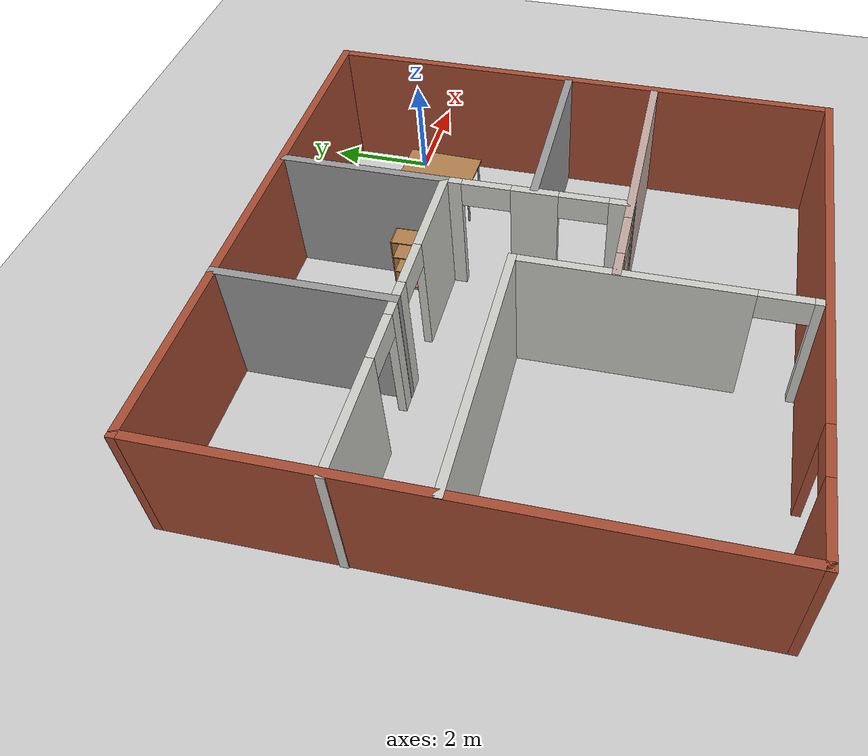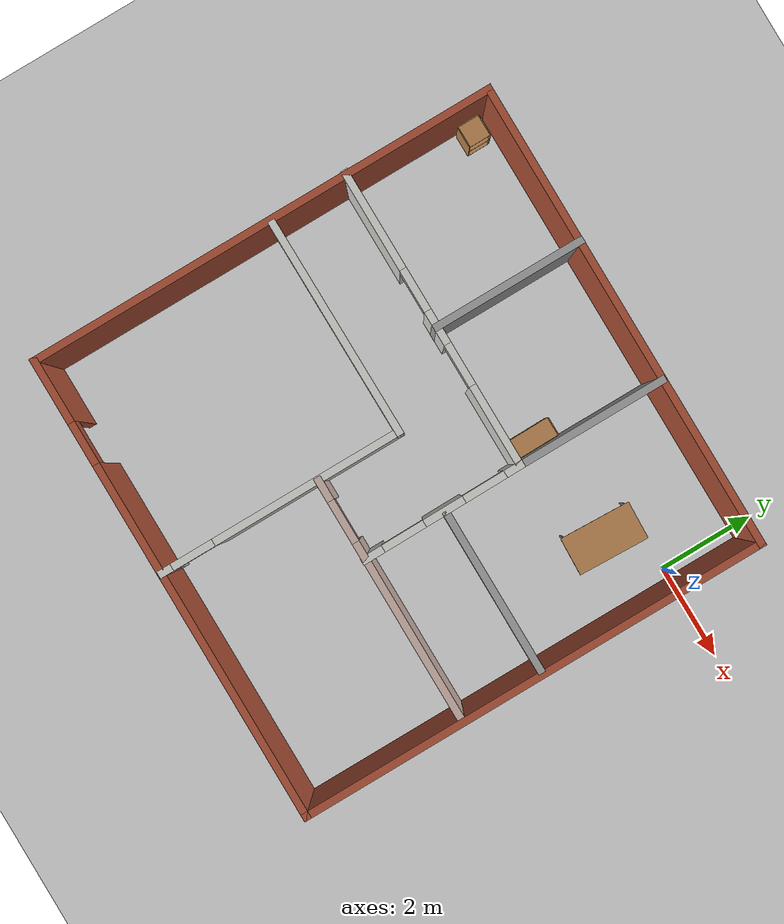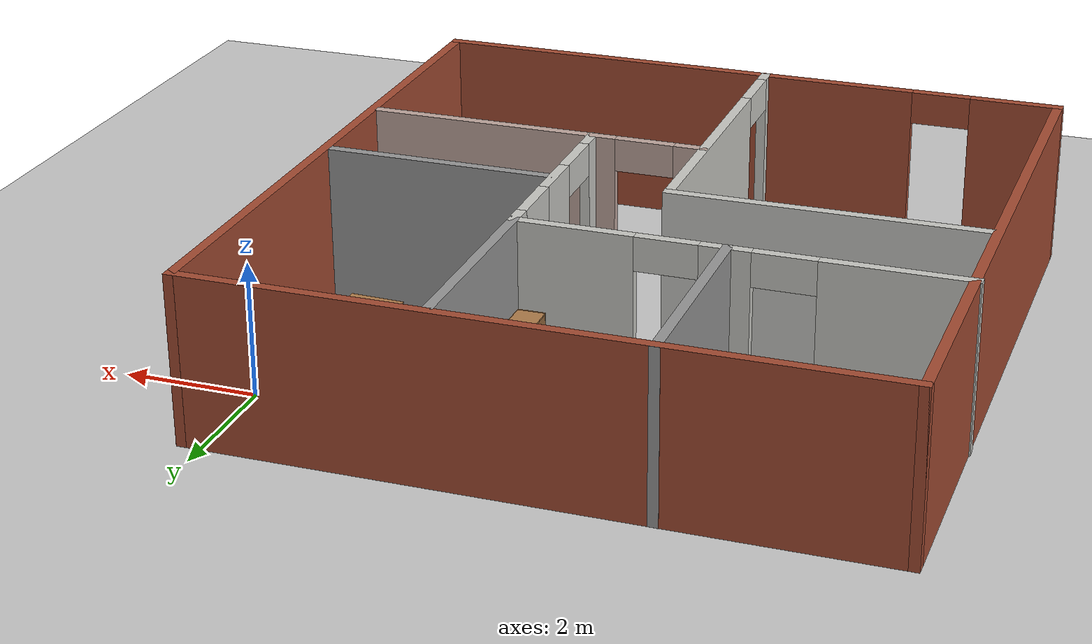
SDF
<sdf version="1.7">
 <world name="default">
  <light name="sun" type="directional">
   <pose>0 0 10 0 -0 0</pose>
   <diffuse>0.8 0.8 0.8 1</diffuse>
   <specular>0.2 0.2 0.2 1</specular>
   <attenuation>
    <range>1000</range>
    <constant>0.9</constant>
    <linear>0.01</linear>
    <quadratic>0.001</quadratic>
   </attenuation>
   <direction>-0.5 0.1 -0.9</direction>
   <spot><inner_angle>0</inner_angle><outer_angle>0</outer_angle><falloff>0</falloff></spot>
  </light>
  <model name="ground_plane">
   <static>1</static>
   <link name="link">
    <collision name="collision">
     <geometry><plane><normal>0 0 1</normal><size>100 100</size></plane></geometry>
     <surface>
      <contact><collide_bitmask>65535</collide_bitmask></contact>
      <friction><ode><mu>100</mu><mu2>50</mu2></ode></friction>
     </surface>
    </collision>
    <visual name="visual">
     <cast_shadows>0</cast_shadows>
     <geometry><plane><normal>0 0 1</normal><size>100 100</size></plane></geometry>
     <material>
      <script><uri>file://media/materials/scripts/gazebo.material</uri><name>Gazebo/Grey</name></script>
     </material>
    </visual>
   </link>
  </model>
  <gravity>0 0 -9.8</gravity>
  <magnetic_field>6e-06 2.3e-05 -4.2e-05</magnetic_field>
  <atmosphere type="adiabatic"/>
  <physics type="ode">
   <max_step_size>0.001</max_step_size>
   <real_time_factor>1</real_time_factor>
   <real_time_update_rate>1000</real_time_update_rate>
  </physics>
  <scene><ambient>0.4 0.4 0.4 1</ambient><background>0.7 0.7 0.7 1</background><shadows>1</shadows></scene>
  <spherical_coordinates>
   <surface_model>EARTH_WGS84</surface_model>
   <latitude_deg>0</latitude_deg>
   <longitude_deg>0</longitude_deg>
   <elevation>0</elevation>
   <heading_deg>0</heading_deg>
  </spherical_coordinates>
  <model name="casa">
   <pose>-4.66509 -3.3325 0 0 -0 0</pose>
   <link name="Wall_0">
    <collision name="Wall_0_Collision">
     <geometry><box><size>10 0.15 2.5</size></box></geometry>
     <pose>0 0 1.25 0 -0 0</pose>
    </collision>
    <visual name="Wall_0_Visual">
     <pose>0 0 1.25 0 -0 0</pose>
     <geometry><box><size>10 0.15 2.5</size></box></geometry>
     <material>
      <script><uri>file://media/materials/scripts/gazebo.material</uri><name>Gazebo/Bricks</name></script>
      <ambient>1 1 1 1</ambient>
     </material>
     <meta><layer>0</layer></meta>
    </visual>
    <pose>-4.91467 -0.001015 0 0 -0 -1.5708</pose>
   </link>
   <link name="Wall_13">
    <pose>0.010213 -4.92626 0 0 -0 -4.9e-05</pose>
    <visual name="Wall_13_Visual_0">
     <pose>-4.29241 0 1.25 0 -0 0</pose>
     <geometry><box><size>1.41518 0.15 2.5</size></box></geometry>
     <material>
      <script><uri>file://media/materials/scripts/gazebo.material</uri><name>Gazebo/Bricks</name></script>
      <ambient>1 1 1 1</ambient>
     </material>
     <meta><layer>0</layer></meta>
    </visual>
    <collision name="Wall_13_Collision_0">
     <geometry><box><size>1.41518 0.15 2.5</size></box></geometry>
     <pose>-4.29241 0 1.25 0 -0 0</pose>
    </collision>
    <visual name="Wall_13_Visual_1">
     <pose>1.15759 0 1.25 0 -0 0</pose>
     <geometry><box><size>7.68482 0.15 2.5</size></box></geometry>
     <material>
      <script><uri>file://media/materials/scripts/gazebo.material</uri><name>Gazebo/Bricks</name></script>
      <ambient>1 1 1 1</ambient>
     </material>
     <meta><layer>0</layer></meta>
    </visual>
    <collision name="Wall_13_Collision_1">
     <geometry><box><size>7.68482 0.15 2.5</size></box></geometry>
     <pose>1.15759 0 1.25 0 -0 0</pose>
    </collision>
    <visual name="Wall_13_Visual_2">
     <pose>-3.13482 0 2.25 0 -0 0</pose>
     <geometry><box><size>0.9 0.15 0.5</size></box></geometry>
     <material>
      <script><uri>file://media/materials/scripts/gazebo.material</uri><name>Gazebo/Bricks</name></script>
      <ambient>1 1 1 1</ambient>
     </material>
     <meta><layer>0</layer></meta>
    </visual>
    <collision name="Wall_13_Collision_2">
     <geometry><box><size>0.9 0.15 0.5</size></box></geometry>
     <pose>-3.13482 0 2.25 0 -0 0</pose>
    </collision>
   </link>
   <link name="Wall_22">
    <pose>-0.308905 -2.3615 0 0 -0 1.5708</pose>
    <visual name="Wall_22_Visual_0">
     <pose>-2.48063 0 1.25 0 -0 0</pose>
     <geometry><box><size>0.288748 0.15 2.5</size></box></geometry>
     <material>
      <script><uri>file://media/materials/scripts/gazebo.material</uri><name>Gazebo/CeilingTiled</name></script>
      <ambient>0.760784 0.662745 0.627451 1</ambient>
     </material>
     <meta><layer>0</layer></meta>
    </visual>
    <collision name="Wall_22_Collision_0">
     <geometry><box><size>0.288748 0.15 2.5</size></box></geometry>
     <pose>-2.48063 0 1.25 0 -0 0</pose>
    </collision>
    <visual name="Wall_22_Visual_1">
     <pose>0.594374 0 1.25 0 -0 0</pose>
     <geometry><box><size>4.06125 0.15 2.5</size></box></geometry>
     <material>
      <script><uri>file://media/materials/scripts/gazebo.material</uri><name>Gazebo/CeilingTiled</name></script>
      <ambient>0.760784 0.662745 0.627451 1</ambient>
     </material>
     <meta><layer>0</layer></meta>
    </visual>
    <collision name="Wall_22_Collision_1">
     <geometry><box><size>4.06125 0.15 2.5</size></box></geometry>
     <pose>0.594374 0 1.25 0 -0 0</pose>
    </collision>
    <visual name="Wall_22_Visual_2">
     <pose>-1.88625 0 2.25 0 -0 0</pose>
     <geometry><box><size>0.9 0.15 0.5</size></box></geometry>
     <material>
      <script><uri>file://media/materials/scripts/gazebo.material</uri><name>Gazebo/CeilingTiled</name></script>
      <ambient>0.760784 0.662745 0.627451 1</ambient>
     </material>
     <meta><layer>0</layer></meta>
    </visual>
    <collision name="Wall_22_Collision_2">
     <geometry><box><size>0.9 0.15 0.5</size></box></geometry>
     <pose>-1.88625 0 2.25 0 -0 0</pose>
    </collision>
   </link>
   <link name="Wall_23">
    <collision name="Wall_23_Collision">
     <geometry><box><size>4.75 0.15 2.5</size></box></geometry>
     <pose>0 0 1.25 0 -0 0</pose>
    </collision>
    <visual name="Wall_23_Visual">
     <pose>0 0 1.25 0 -0 0</pose>
     <geometry><box><size>4.75 0.15 2.5</size></box></geometry>
     <material>
      <script><uri>file://media/materials/scripts/gazebo.material</uri><name>Gazebo/CeilingTiled</name></script>
      <ambient>0.760784 0.662745 0.627451 1</ambient>
     </material>
     <meta><layer>0</layer></meta>
    </visual>
    <pose>-2.60891 0.201802 0 0 -0 -3.13581</pose>
   </link>
   <link name="Wall_25">
    <pose>-1.7734 1.8295 0 0 -0 0</pose>
    <visual name="Wall_25_Visual_0">
     <pose>-2.16239 0 1.25 0 -0 0</pose>
     <geometry><box><size>2.14885 0.15 2.5</size></box></geometry>
     <material>
      <script><uri>file://media/materials/scripts/gazebo.material</uri><name>Gazebo/CeilingTiled</name></script>
      <ambient>0.760784 0.662745 0.627451 1</ambient>
     </material>
     <meta><layer>0</layer></meta>
    </visual>
    <collision name="Wall_25_Collision_0">
     <geometry><box><size>2.14885 0.15 2.5</size></box></geometry>
     <pose>-2.16239 0 1.25 0 -0 0</pose>
    </collision>
    <visual name="Wall_25_Visual_1">
     <pose>0.17317 0 1.25 0 -0 0</pose>
     <geometry><box><size>0.722272 0.15 2.5</size></box></geometry>
     <material>
      <script><uri>file://media/materials/scripts/gazebo.material</uri><name>Gazebo/CeilingTiled</name></script>
      <ambient>0.760784 0.662745 0.627451 1</ambient>
     </material>
     <meta><layer>0</layer></meta>
    </visual>
    <collision name="Wall_25_Collision_1">
     <geometry><box><size>0.722272 0.15 2.5</size></box></geometry>
     <pose>0.17317 0 1.25 0 -0 0</pose>
    </collision>
    <visual name="Wall_25_Visual_2">
     <pose>2.33556 0 1.25 0 -0 0</pose>
     <geometry><box><size>1.80251 0.15 2.5</size></box></geometry>
     <material>
      <script><uri>file://media/materials/scripts/gazebo.material</uri><name>Gazebo/CeilingTiled</name></script>
      <ambient>0.760784 0.662745 0.627451 1</ambient>
     </material>
     <meta><layer>0</layer></meta>
    </visual>
    <collision name="Wall_25_Collision_2">
     <geometry><box><size>1.80251 0.15 2.5</size></box></geometry>
     <pose>2.33556 0 1.25 0 -0 0</pose>
    </collision>
    <visual name="Wall_25_Visual_3">
     <pose>-0.637966 0 2.25 0 -0 0</pose>
     <geometry><box><size>0.9 0.15 0.5</size></box></geometry>
     <material>
      <script><uri>file://media/materials/scripts/gazebo.material</uri><name>Gazebo/CeilingTiled</name></script>
      <ambient>0.760784 0.662745 0.627451 1</ambient>
     </material>
     <meta><layer>0</layer></meta>
    </visual>
    <collision name="Wall_25_Collision_3">
     <geometry><box><size>0.9 0.15 0.5</size></box></geometry>
     <pose>-0.637966 0 2.25 0 -0 0</pose>
    </collision>
    <visual name="Wall_25_Visual_4">
     <pose>0.984306 0 2.25 0 -0 0</pose>
     <geometry><box><size>0.9 0.15 0.5</size></box></geometry>
     <material>
      <script><uri>file://media/materials/scripts/gazebo.material</uri><name>Gazebo/CeilingTiled</name></script>
      <ambient>0.760784 0.662745 0.627451 1</ambient>
     </material>
     <meta><layer>0</layer></meta>
    </visual>
    <collision name="Wall_25_Collision_4">
     <geometry><box><size>0.9 0.15 0.5</size></box></geometry>
     <pose>0.984306 0 2.25 0 -0 0</pose>
    </collision>
   </link>
   <link name="Wall_28">
    <pose>2.2611 -1.5325 0 0 -0 0</pose>
    <visual name="Wall_28_Visual_0">
     <pose>-2.37 0 1.25 0 -0 0</pose>
     <geometry><box><size>0.509997 0.15 2.5</size></box></geometry>
     <material>
      <script><uri>file://media/materials/scripts/gazebo.material</uri><name>Gazebo/Grey</name></script>
      <ambient>0.760784 0.662745 0.627451 1</ambient>
     </material>
     <meta><layer>0</layer></meta>
    </visual>
    <collision name="Wall_28_Collision_0">
     <geometry><box><size>0.509997 0.15 2.5</size></box></geometry>
     <pose>-2.37 0 1.25 0 -0 0</pose>
    </collision>
    <visual name="Wall_28_Visual_1">
     <pose>0.704999 0 1.25 0 -0 0</pose>
     <geometry><box><size>3.84 0.15 2.5</size></box></geometry>
     <material>
      <script><uri>file://media/materials/scripts/gazebo.material</uri><name>Gazebo/Grey</name></script>
      <ambient>0.760784 0.662745 0.627451 1</ambient>
     </material>
     <meta><layer>0</layer></meta>
    </visual>
    <collision name="Wall_28_Collision_1">
     <geometry><box><size>3.84 0.15 2.5</size></box></geometry>
     <pose>0.704999 0 1.25 0 -0 0</pose>
    </collision>
    <visual name="Wall_28_Visual_2">
     <pose>-1.665 0 2.25 0 -0 0</pose>
     <geometry><box><size>0.9 0.15 0.5</size></box></geometry>
     <material>
      <script><uri>file://media/materials/scripts/gazebo.material</uri><name>Gazebo/Grey</name></script>
      <ambient>0.760784 0.662745 0.627451 1</ambient>
     </material>
     <meta><layer>0</layer></meta>
    </visual>
    <collision name="Wall_28_Collision_2">
     <geometry><box><size>0.9 0.15 0.5</size></box></geometry>
     <pose>-1.665 0 2.25 0 -0 0</pose>
    </collision>
   </link>
   <link name="Wall_30">
    <pose>1.40159 0.143002 0 0 -0 -1.56279</pose>
    <visual name="Wall_30_Visual_0">
     <pose>-1.56426 0 1.25 0 -0 0</pose>
     <geometry><box><size>0.394588 0.15 2.5</size></box></geometry>
     <material>
      <script><uri>file://media/materials/scripts/gazebo.material</uri><name>Gazebo/CeilingTiled</name></script>
      <ambient>0.760784 0.662745 0.627451 1</ambient>
     </material>
     <meta><layer>0</layer></meta>
    </visual>
    <collision name="Wall_30_Collision_0">
     <geometry><box><size>0.394588 0.15 2.5</size></box></geometry>
     <pose>-1.56426 0 1.25 0 -0 0</pose>
    </collision>
    <visual name="Wall_30_Visual_1">
     <pose>-0.035991 0 1.25 0 -0 0</pose>
     <geometry><box><size>0.861951 0.15 2.5</size></box></geometry>
     <material>
      <script><uri>file://media/materials/scripts/gazebo.material</uri><name>Gazebo/CeilingTiled</name></script>
      <ambient>0.760784 0.662745 0.627451 1</ambient>
     </material>
     <meta><layer>0</layer></meta>
    </visual>
    <collision name="Wall_30_Collision_1">
     <geometry><box><size>0.861951 0.15 2.5</size></box></geometry>
     <pose>-0.035991 0 1.25 0 -0 0</pose>
    </collision>
    <visual name="Wall_30_Visual_2">
     <pose>1.52827 0 1.25 0 -0 0</pose>
     <geometry><box><size>0.466569 0.15 2.5</size></box></geometry>
     <material>
      <script><uri>file://media/materials/scripts/gazebo.material</uri><name>Gazebo/CeilingTiled</name></script>
      <ambient>0.760784 0.662745 0.627451 1</ambient>
     </material>
     <meta><layer>0</layer></meta>
    </visual>
    <collision name="Wall_30_Collision_2">
     <geometry><box><size>0.466569 0.15 2.5</size></box></geometry>
     <pose>1.52827 0 1.25 0 -0 0</pose>
    </collision>
    <visual name="Wall_30_Visual_3">
     <pose>-0.916966 0 2.25 0 -0 0</pose>
     <geometry><box><size>0.9 0.15 0.5</size></box></geometry>
     <material>
      <script><uri>file://media/materials/scripts/gazebo.material</uri><name>Gazebo/CeilingTiled</name></script>
      <ambient>0.760784 0.662745 0.627451 1</ambient>
     </material>
     <meta><layer>0</layer></meta>
    </visual>
    <collision name="Wall_30_Collision_3">
     <geometry><box><size>0.9 0.15 0.5</size></box></geometry>
     <pose>-0.916966 0 2.25 0 -0 0</pose>
    </collision>
    <visual name="Wall_30_Visual_4">
     <pose>0.844985 0 2.25 0 -0 0</pose>
     <geometry><box><size>0.9 0.15 0.5</size></box></geometry>
     <material>
      <script><uri>file://media/materials/scripts/gazebo.material</uri><name>Gazebo/CeilingTiled</name></script>
      <ambient>0.760784 0.662745 0.627451 1</ambient>
     </material>
     <meta><layer>0</layer></meta>
    </visual>
    <collision name="Wall_30_Collision_4">
     <geometry><box><size>0.9 0.15 0.5</size></box></geometry>
     <pose>0.844985 0 2.25 0 -0 0</pose>
    </collision>
   </link>
   <link name="Wall_32">
    <collision name="Wall_32_Collision">
     <geometry><box><size>3.5 0.15 2.5</size></box></geometry>
     <pose>0 0 1.25 0 -0 0</pose>
    </collision>
    <visual name="Wall_32_Visual">
     <pose>0 0 1.25 0 -0 0</pose>
     <geometry><box><size>3.5 0.15 2.5</size></box></geometry>
     <material>
      <script><uri>file://media/materials/scripts/gazebo.material</uri><name>Gazebo/Grey</name></script>
      <ambient>1 1 1 1</ambient>
     </material>
     <meta><layer>0</layer></meta>
    </visual>
    <pose>3.1561 0.197502 0 0 -0 0</pose>
   </link>
   <link name="Wall_34">
    <collision name="Wall_34_Collision">
     <geometry><box><size>3.25 0.15 2.5</size></box></geometry>
     <pose>0 0 1.25 0 -0 0</pose>
    </collision>
    <visual name="Wall_34_Visual">
     <pose>0 0 1.25 0 -0 0</pose>
     <geometry><box><size>3.25 0.15 2.5</size></box></geometry>
     <material>
      <script><uri>file://media/materials/scripts/gazebo.material</uri><name>Gazebo/Grey</name></script>
      <ambient>1 1 1 1</ambient>
     </material>
     <meta><layer>0</layer></meta>
    </visual>
    <pose>-1.6159 3.3765 0 0 -0 1.5708</pose>
   </link>
   <link name="Wall_36">
    <collision name="Wall_36_Collision">
     <geometry><box><size>3.22688 0.15 2.5</size></box></geometry>
     <pose>0 0 1.25 0 -0 0</pose>
    </collision>
    <visual name="Wall_36_Visual">
     <pose>0 0 1.25 0 -0 0</pose>
     <geometry><box><size>3.22688 0.15 2.5</size></box></geometry>
     <material>
      <script><uri>file://media/materials/scripts/gazebo.material</uri><name>Gazebo/Grey</name></script>
      <ambient>1 1 1 1</ambient>
     </material>
     <meta><layer>0</layer></meta>
    </visual>
    <pose>1.3886 3.368 0 0 -0 1.57047</pose>
   </link>
   <link name="Wall_4">
    <collision name="Wall_4_Collision">
     <geometry><box><size>10 0.15 2.5</size></box></geometry>
     <pose>0 0 1.25 0 -0 0</pose>
    </collision>
    <visual name="Wall_4_Visual">
     <pose>0 0 1.25 0 -0 0</pose>
     <geometry><box><size>10 0.15 2.5</size></box></geometry>
     <material>
      <script><uri>file://media/materials/scripts/gazebo.material</uri><name>Gazebo/Bricks</name></script>
      <ambient>1 1 1 1</ambient>
     </material>
     <meta><layer>0</layer></meta>
    </visual>
    <pose>0.010213 4.92374 0 0 -0 -4.9e-05</pose>
   </link>
   <link name="Wall_5">
    <collision name="Wall_5_Collision">
     <geometry><box><size>10 0.15 2.5</size></box></geometry>
     <pose>0 0 1.25 0 -0 0</pose>
    </collision>
    <visual name="Wall_5_Visual">
     <pose>0 0 1.25 0 -0 0</pose>
     <geometry><box><size>10 0.15 2.5</size></box></geometry>
     <material>
      <script><uri>file://media/materials/scripts/gazebo.material</uri><name>Gazebo/Bricks</name></script>
      <ambient>1 1 1 1</ambient>
     </material>
     <meta><layer>0</layer></meta>
    </visual>
    <pose>4.93509 -0.001498 0 0 -0 -1.5708</pose>
   </link>
   <static>1</static>
  </model>
  <model name="cabinet">
   <static>1</static>
   <link name="cabinet_bottom_plate">
    <inertial>
     <pose>0 0 -1 0 -0 0</pose>
     <inertia><ixx>2.05</ixx><ixy>0</ixy><ixz>0</ixz><iyy>2.05</iyy><iyz>0</iyz><izz>2.05</izz></inertia>
     <mass>25</mass>
    </inertial>
    <collision name="cabinet_bottom_plate_geom">
     <pose>0 0 0.01 0 -0 0</pose>
     <geometry><box><size>0.45 0.45 0.02</size></box></geometry>
    </collision>
    <visual name="cabinet_bottom_plate_geom_visual">
     <pose>0 0 0.01 0 -0 0</pose>
     <geometry><box><size>0.45 0.45 0.02</size></box></geometry>
     <material>
      <script><uri>file://media/materials/scripts/gazebo.material</uri><name>Gazebo/Wood</name></script>
     </material>
    </visual>
    <collision name="cabinet_bottom_plate_geom_cabinet_back_plate">
     <pose>0.235 0 0.51 0 -0 0</pose>
     <geometry><box><size>0.02 0.45 1.02</size></box></geometry>
    </collision>
    <visual name="cabinet_bottom_plate_geom_cabinet_back_plate_visual">
     <pose>0.235 0 0.51 0 -0 0</pose>
     <geometry><box><size>0.02 0.45 1.02</size></box></geometry>
     <material>
      <script><uri>file://media/materials/scripts/gazebo.material</uri><name>Gazebo/Wood</name></script>
     </material>
    </visual>
    <collision name="cabinet_bottom_plate_geom_cabinet_left_plate">
     <pose>0 0.235 0.51 0 -0 0</pose>
     <geometry><box><size>0.45 0.02 1.02</size></box></geometry>
    </collision>
    <visual name="cabinet_bottom_plate_geom_cabinet_left_plate_visual">
     <pose>0 0.235 0.51 0 -0 0</pose>
     <geometry><box><size>0.45 0.02 1.02</size></box></geometry>
     <material>
      <script><uri>file://media/materials/scripts/gazebo.material</uri><name>Gazebo/Wood</name></script>
     </material>
    </visual>
    <collision name="cabinet_bottom_plate_geom_cabinet_middle_plate">
     <pose>0 0 0.51 0 -0 0</pose>
     <geometry><box><size>0.45 0.45 0.02</size></box></geometry>
    </collision>
    <visual name="cabinet_bottom_plate_geom_cabinet_middle_plate_visual">
     <pose>0 0 0.51 0 -0 0</pose>
     <geometry><box><size>0.45 0.45 0.02</size></box></geometry>
     <material>
      <script><uri>file://media/materials/scripts/gazebo.material</uri><name>Gazebo/Wood</name></script>
     </material>
    </visual>
    <collision name="cabinet_bottom_plate_geom_cabinet_right_plate">
     <pose>0 -0.235 0.51 0 -0 0</pose>
     <geometry><box><size>0.45 0.02 1.02</size></box></geometry>
    </collision>
    <visual name="cabinet_bottom_plate_geom_cabinet_right_plate_visual">
     <pose>0 -0.235 0.51 0 -0 0</pose>
     <geometry><box><size>0.45 0.02 1.02</size></box></geometry>
     <material>
      <script><uri>file://media/materials/scripts/gazebo.material</uri><name>Gazebo/Wood</name></script>
     </material>
    </visual>
    <collision name="cabinet_bottom_plate_geom_cabinet_top_plate">
     <pose>0 0 1.01 0 -0 0</pose>
     <geometry><box><size>0.45 0.45 0.02</size></box></geometry>
    </collision>
    <visual name="cabinet_bottom_plate_geom_cabinet_top_plate_visual">
     <pose>0 0 1.01 0 -0 0</pose>
     <geometry><box><size>0.45 0.45 0.02</size></box></geometry>
     <material>
      <script><uri>file://media/materials/scripts/gazebo.material</uri><name>Gazebo/Wood</name></script>
     </material>
    </visual>
   </link>
   <pose>-9.24664 1.13498 0 0 -0 -3.13613</pose>
  </model>
  <model name="bookshelf">
   <static>1</static>
   <link name="link">
    <inertial><mass>1</mass></inertial>
    <collision name="back">
     <pose>0 0.005 0.6 0 -0 0</pose>
     <geometry><box><size>0.9 0.01 1.2</size></box></geometry>
    </collision>
    <visual name="visual1">
     <pose>0 0.005 0.6 0 -0 0</pose>
     <geometry><box><size>0.9 0.01 1.2</size></box></geometry>
     <material>
      <script><uri>file://media/materials/scripts/gazebo.material</uri><name>Gazebo/Wood</name></script>
     </material>
    </visual>
    <collision name="left_side">
     <pose>0.45 -0.195 0.6 0 -0 0</pose>
     <geometry><box><size>0.02 0.4 1.2</size></box></geometry>
    </collision>
    <visual name="visual2">
     <pose>0.45 -0.195 0.6 0 -0 0</pose>
     <geometry><box><size>0.02 0.4 1.2</size></box></geometry>
     <material>
      <script><uri>file://media/materials/scripts/gazebo.material</uri><name>Gazebo/Wood</name></script>
     </material>
    </visual>
    <collision name="right_side">
     <pose>-0.45 -0.195 0.6 0 -0 0</pose>
     <geometry><box><size>0.02 0.4 1.2</size></box></geometry>
    </collision>
    <visual name="visual3">
     <pose>-0.45 -0.195 0.6 0 -0 0</pose>
     <geometry><box><size>0.02 0.4 1.2</size></box></geometry>
     <material>
      <script><uri>file://media/materials/scripts/gazebo.material</uri><name>Gazebo/Wood</name></script>
     </material>
    </visual>
    <collision name="bottom">
     <pose>0 -0.195 0.03 0 -0 0</pose>
     <geometry><box><size>0.88 0.4 0.06</size></box></geometry>
    </collision>
    <visual name="visual4">
     <pose>0 -0.195 0.03 0 -0 0</pose>
     <geometry><box><size>0.88 0.4 0.06</size></box></geometry>
     <material>
      <script><uri>file://media/materials/scripts/gazebo.material</uri><name>Gazebo/Wood</name></script>
     </material>
    </visual>
    <collision name="top">
     <pose>0 -0.195 1.19 0 -0 0</pose>
     <geometry><box><size>0.88 0.4 0.02</size></box></geometry>
    </collision>
    <visual name="visual5">
     <pose>0 -0.195 1.19 0 -0 0</pose>
     <geometry><box><size>0.88 0.4 0.02</size></box></geometry>
     <material>
      <script><uri>file://media/materials/scripts/gazebo.material</uri><name>Gazebo/Wood</name></script>
     </material>
    </visual>
    <collision name="low_shelf">
     <pose>0 -0.195 0.43 0 -0 0</pose>
     <geometry><box><size>0.88 0.4 0.02</size></box></geometry>
    </collision>
    <visual name="visual6">
     <pose>0 -0.195 0.43 0 -0 0</pose>
     <geometry><box><size>0.88 0.4 0.02</size></box></geometry>
     <material>
      <script><uri>file://media/materials/scripts/gazebo.material</uri><name>Gazebo/Wood</name></script>
     </material>
    </visual>
    <collision name="high_shelf">
     <pose>0 -0.195 0.8 0 -0 0</pose>
     <geometry><box><size>0.88 0.4 0.02</size></box></geometry>
    </collision>
    <visual name="visual7">
     <pose>0 -0.195 0.8 0 -0 0</pose>
     <geometry><box><size>0.88 0.4 0.02</size></box></geometry>
     <material>
      <script><uri>file://media/materials/scripts/gazebo.material</uri><name>Gazebo/Wood</name></script>
     </material>
    </visual>
   </link>
   <pose>-3.36437 -0.953764 0 0 0 -1.5608</pose>
  </model>
  <model name="table">
   <static>1</static>
   <link name="link">
    <collision name="surface">
     <pose>0 0 1 0 -0 0</pose>
     <geometry><box><size>1.5 0.8 0.03</size></box></geometry>
     <surface><friction><ode><mu>0.6</mu><mu2>0.6</mu2></ode></friction></surface>
    </collision>
    <visual name="visual1">
     <pose>0 0 1 0 -0 0</pose>
     <geometry><box><size>1.5 0.8 0.03</size></box></geometry>
     <material>
      <script><uri>file://media/materials/scripts/gazebo.material</uri><name>Gazebo/Wood</name></script>
     </material>
    </visual>
    <visual name="front_left_leg">
     <pose>0.68 0.38 0.5 0 -0 0</pose>
     <geometry><cylinder><radius>0.02</radius><length>1</length></cylinder></geometry>
     <material>
      <script><uri>file://media/materials/scripts/gazebo.material</uri><name>Gazebo/Grey</name></script>
     </material>
    </visual>
    <collision name="front_right_leg">
     <pose>0.68 -0.38 0.5 0 -0 0</pose>
     <geometry><cylinder><radius>0.02</radius><length>1</length></cylinder></geometry>
    </collision>
    <visual name="front_right_leg">
     <pose>0.68 -0.38 0.5 0 -0 0</pose>
     <geometry><cylinder><radius>0.02</radius><length>1</length></cylinder></geometry>
     <material>
      <script><uri>file://media/materials/scripts/gazebo.material</uri><name>Gazebo/Grey</name></script>
     </material>
    </visual>
    <collision name="back_right_leg">
     <pose>-0.68 -0.38 0.5 0 -0 0</pose>
     <geometry><cylinder><radius>0.02</radius><length>1</length></cylinder></geometry>
    </collision>
    <visual name="back_right_leg">
     <pose>-0.68 -0.38 0.5 0 -0 0</pose>
     <geometry><cylinder><radius>0.02</radius><length>1</length></cylinder></geometry>
     <material>
      <script><uri>file://media/materials/scripts/gazebo.material</uri><name>Gazebo/Grey</name></script>
     </material>
    </visual>
    <collision name="back_left_leg">
     <pose>-0.68 0.38 0.5 0 -0 0</pose>
     <geometry><cylinder><radius>0.02</radius><length>1</length></cylinder></geometry>
    </collision>
    <visual name="back_left_leg">
     <pose>-0.68 0.38 0.5 0 -0 0</pose>
     <geometry><cylinder><radius>0.02</radius><length>1</length></cylinder></geometry>
     <material>
      <script><uri>file://media/materials/scripts/gazebo.material</uri><name>Gazebo/Grey</name></script>
     </material>
    </visual>
   </link>
   <pose>-1.1868 -0.75806 0 0 -0 1.53176</pose>
  </model>
 </world>
</sdf>
